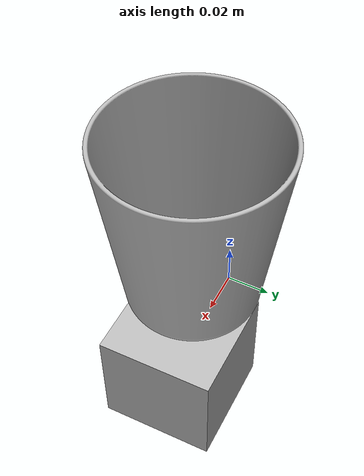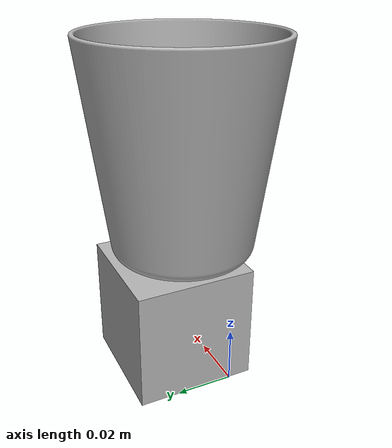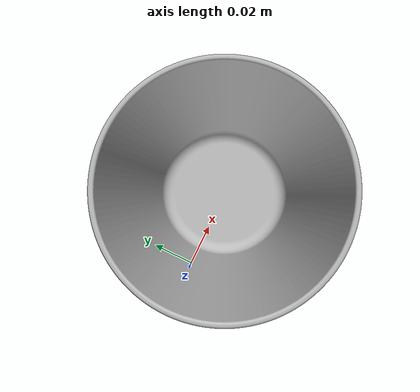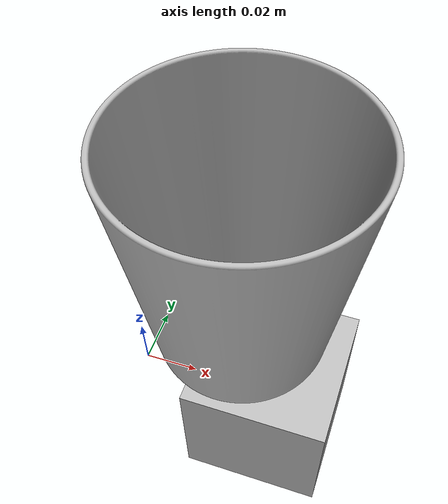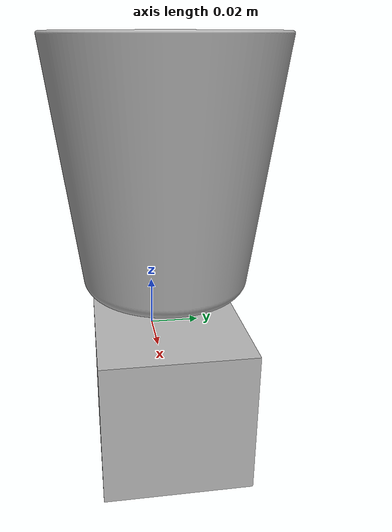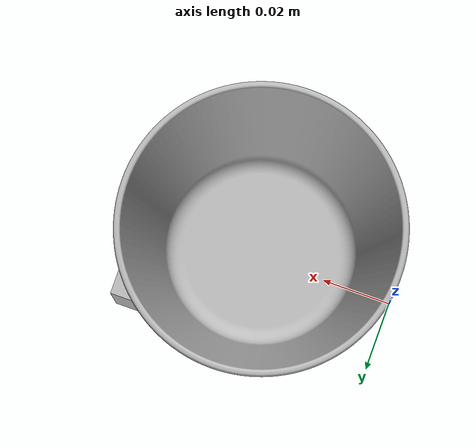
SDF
<?xml version="1.0" ?>
<sdf version="1.5">
  <world name="default">

    <!-- Sky with clouds -->
    <scene>
      <sky>
        <clouds>
            <speed>0</speed>
        </clouds>
      </sky>
    </scene>

    <!-- A global light source -->
    <include>
      <uri>model://sun</uri>
    </include>
    <!-- A ground plane -->

      <!-- Focus camera on a desired location -->
    <gui fullscreen='0'>
      <camera name='user_camera'>
        <!-- pose is (m) X Y Z (rad) R P Y -->
        <pose>0.330851 -0.208130 0.226667 0.000000 0.323999 2.544188</pose>
        <view_controller>orbit</view_controller>
      </camera>
    </gui>

    <!-- OBJECTS HOLDER -->
    <model name="base_object">
    <static>true</static>
    <link name="base">
      <pose>0.05 0 0 0 0 0 0</pose>
      <collision name="base_collision">
        <geometry>
          <box>
            <size>0.05 0.05 0.05</size>
          </box>
        </geometry>
      </collision>
      <visual name="base">
        <geometry>
          <box>
            <size>0.05 0.05 0.05</size>
          </box>
        </geometry>
      </visual>
      <surface>
        <friction>
          <ode>
            <mu>0.133</mu>
            <mu2>0.133</mu2>
          </ode>
          <torsional>
            <ode/>
          </torsional>
        </friction>
        <bounce/>
      </surface>
    </link>
    </model>

    <!-- Objects in the world -->
    <!-- beta -->
    <!-- ball -->

    <!-- cylinder flange -->
    <!-- plastic glass -->
   <model name="cylinder_object">
    <static>false</static>
    <link name="cylinder">
      <pose>0.038778 0.000278 0.033463 0 0 0</pose>
      <collision name="static_cylinder_collision">
        <geometry>
          <mesh><uri>model://bicchiere_mano_collision.stl</uri><scale>0.001 0.001 0.001</scale></mesh>
        </geometry>
      </collision>
      <visual name="cylinder">
         <geometry>
          <mesh><uri>model://bicchiere_mano.stl</uri><scale>0.001 0.001 0.001</scale></mesh>
        </geometry>
      </visual>
      <surface>
        <friction>
          <ode>
            <mu>0.133</mu>
            <mu2>0.133</mu2>
          </ode>
          <torsional>
            <ode/>
          </torsional>
        </friction>
        <bounce/>
      </surface>
    </link>
    </model>

    </world>

</sdf>
